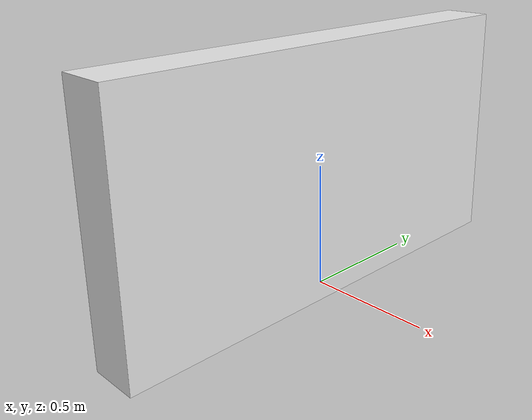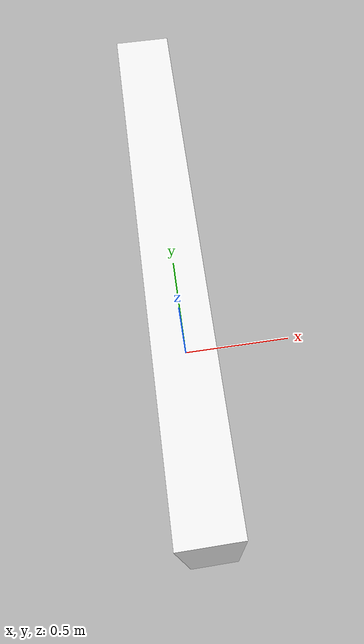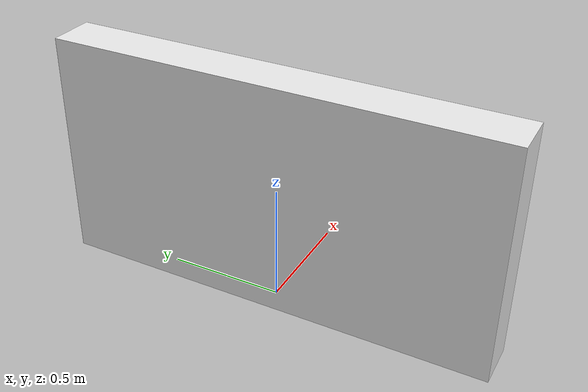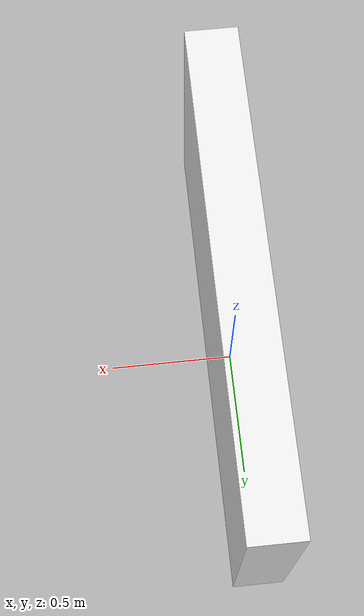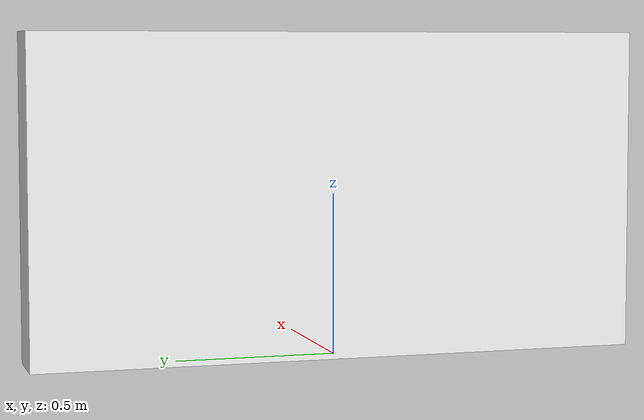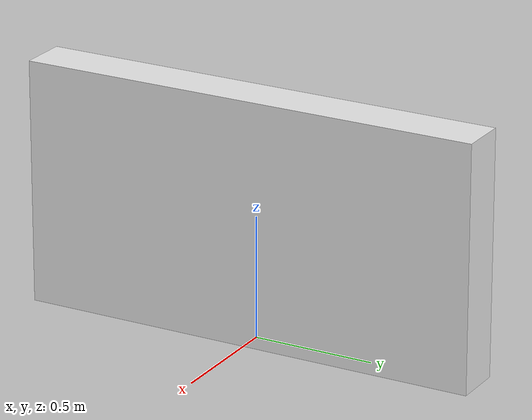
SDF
<?xml version="1.0"?>
<sdf version="1.5">
  <model name="short_wall">
    <static>true</static>
    <link name="link">
      <collision name="collision">
        <geometry>
          <mesh>
            <uri>model://short_wall/meshes/short_wall.obj</uri>
            <scale>1 1 1</scale>
          </mesh>
        </geometry>
        <surface>
          <friction>
            <ode>
              <mu>100</mu>
              <mu2>50</mu2>
            </ode>
          </friction>
        </surface>
      </collision>
      <visual name="visual">
        <geometry>
          <mesh>
            <uri>model://short_wall/meshes/short_wall.obj</uri>
            <scale>1 1 1</scale>
          </mesh>
        </geometry>
        <material>
          <script>
            <uri>file://media/materials/scripts/gazebo.material</uri>
            <name>Gazebo/White</name>
          </script>
        </material>
      </visual>
    </link>
  </model>
</sdf>
